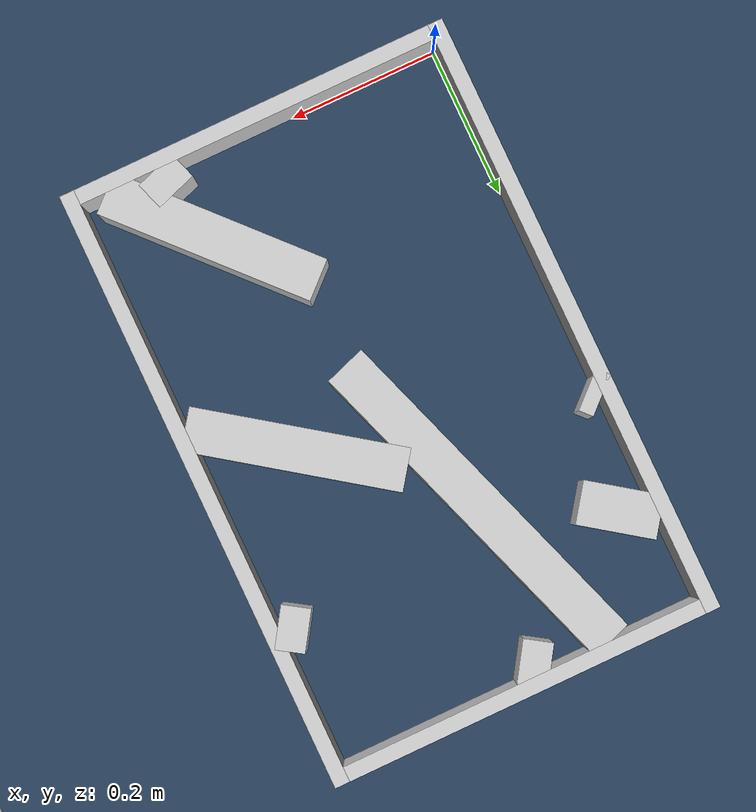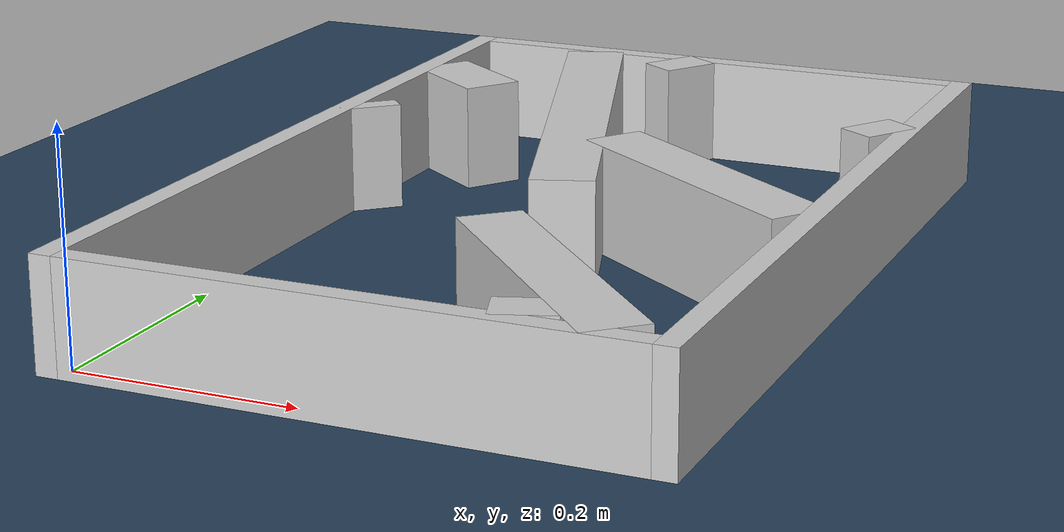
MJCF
<?xml version="1.0" ?>
<mujoco model="generated_real_template">
  <compiler angle="degree"/>
  <option timestep="0.002" integrator="implicitfast" iterations="100" cone="elliptic"/>
  <default>
    <geom density="1"/>
  </default>
  <asset>
    <texture builtin="gradient" height="3072" rgb1="0.3 0.5 0.7" rgb2="0 0 0" type="skybox" width="512"/>
    <texture builtin="checker" height="300" mark="edge" markrgb="0.8 0.8 0.8" name="groundplane" rgb1="0.2 0.3 0.4" rgb2="0.1 0.2 0.3" type="2d" width="300"/>
    <material name="groundplane" reflectance="0.2" texrepeat="5 5" texture="groundplane" texuniform="true"/>
  </asset>
  <worldbody>
    <light dir="0 0 -1" directional="true" pos="0 0 1.5"/>
    <geom name="floor" type="plane" condim="4" friction="0.5 0.005 0.001" material="groundplane" size="0 0 0.05"/>
    <body name="walls">
      <geom name="wall_boundary_left" type="box" condim="4" friction="1.0 0.005 0.0001" rgba="0.8 0.8 0.8 1" pos="-0.010000 0.387500 0.050000" euler="0 0 0.000000" size="0.010000 0.407500 0.050000"/>
      <geom name="wall_boundary_right" type="box" condim="4" friction="1.0 0.005 0.0001" rgba="0.8 0.8 0.8 1" pos="0.500000 0.387500 0.050000" euler="0 0 0.000000" size="0.010000 0.407500 0.050000"/>
      <geom name="wall_boundary_bottom" type="box" condim="4" friction="1.0 0.005 0.0001" rgba="0.8 0.8 0.8 1" pos="0.245000 -0.010000 0.050000" euler="0 0 0.000000" size="0.245000 0.010000 0.050000"/>
      <geom name="wall_boundary_top" type="box" condim="4" friction="1.0 0.005 0.0001" rgba="0.8 0.8 0.8 1" pos="0.245000 0.785000 0.050000" euler="0 0 0.000000" size="0.245000 0.010000 0.050000"/>
      <geom name="wall_inner_1_1" type="box" condim="4" friction="1.0 0.005 0.0001" rgba="0.8 0.8 0.8 1" pos="0.473836 0.593729 0.050000" euler="0 0 146.847362" size="0.019306 0.028500 0.050000"/>
      <geom name="wall_inner_1_2" type="box" condim="4" friction="1.0 0.005 0.0001" rgba="0.8 0.8 0.8 1" pos="0.218617 0.760438 0.050000" euler="0 0 146.847362" size="0.019566 0.028500 0.050000"/>
      <geom name="wall_inner_2_1" type="box" condim="4" friction="1.0 0.005 0.0001" rgba="0.8 0.8 0.8 1" pos="0.380410 0.018164 0.050000" euler="0 0 108.922996" size="0.019201 0.028500 0.050000"/>
      <geom name="wall_inner_2_2" type="box" condim="4" friction="1.0 0.005 0.0001" rgba="0.8 0.8 0.8 1" pos="0.198354 0.549212 0.050000" euler="0 0 108.922996" size="0.238688 0.028500 0.050000"/>
      <geom name="wall_inner_3_1" type="box" condim="4" friction="1.0 0.005 0.0001" rgba="0.8 0.8 0.8 1" pos="0.007634 0.486665 0.050000" euler="0 0 -47.376678" size="0.009838 0.028500 0.050000"/>
      <geom name="wall_inner_3_2" type="box" condim="4" friction="1.0 0.005 0.0001" rgba="0.8 0.8 0.8 1" pos="0.357708 0.106274 0.050000" euler="0 0 -47.376678" size="0.144429 0.028500 0.050000"/>
      <geom name="wall_inner_4_1" type="box" condim="4" friction="1.0 0.005 0.0001" rgba="0.8 0.8 0.8 1" pos="0.041711 0.632482 0.050000" euler="0 0 -35.706125" size="0.051367 0.028500 0.050000"/>
      <geom name="wall_inner_4_2" type="box" condim="4" friction="1.0 0.005 0.0001" rgba="0.8 0.8 0.8 1" pos="0.375514 0.392566 0.050000" euler="0 0 -35.706125" size="0.140989 0.028500 0.050000"/>
    </body>
  </worldbody>
</mujoco>
